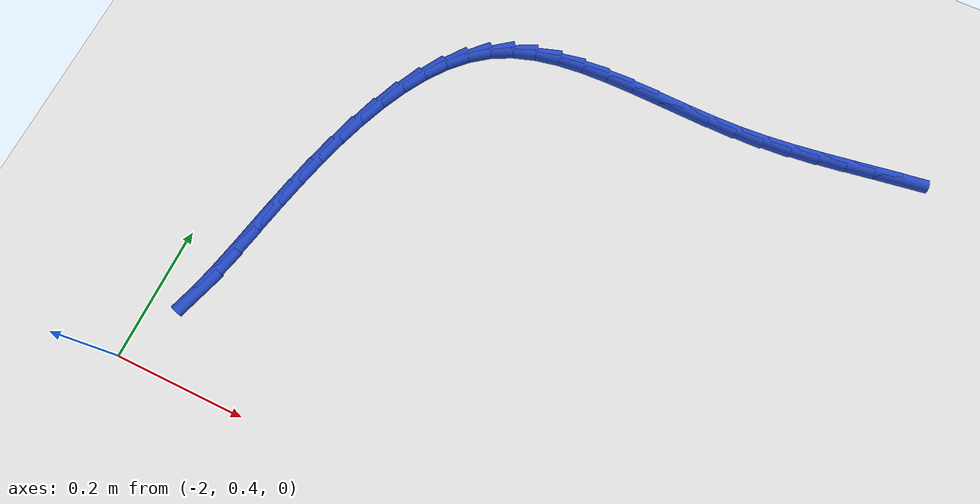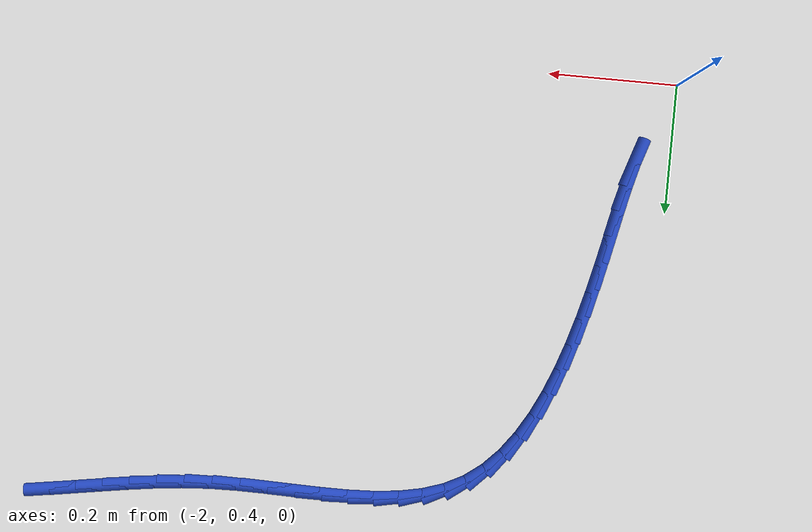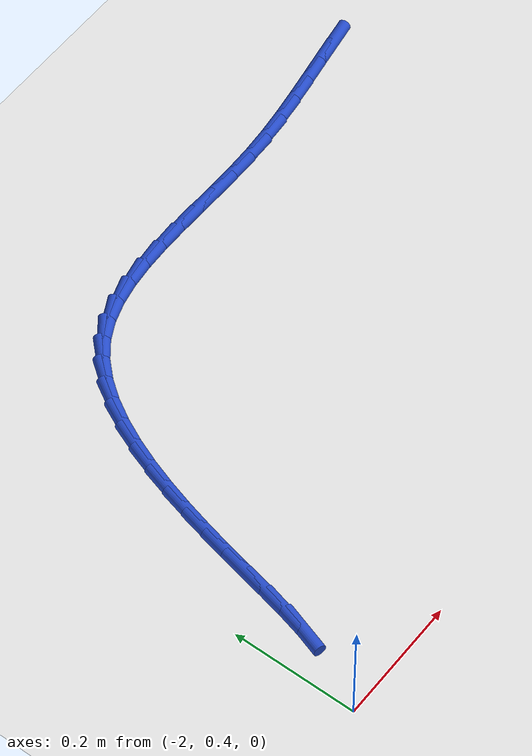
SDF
<sdf version="1.6">
 <world name="default">
  <model name="ground_plane">
   <static>1</static>
   <link name="link">
    <collision name="collision">
     <geometry><plane><normal>0 0 1</normal><size>100 100</size></plane></geometry>
     <surface><friction><ode><mu>100</mu><mu2>50</mu2></ode></friction></surface>
    </collision>
    <visual name="visual">
     <cast_shadows>0</cast_shadows>
     <geometry><plane><normal>0 0 1</normal><size>100 100</size></plane></geometry>
     <material>
      <script><uri>file://media/materials/scripts/gazebo.material</uri><name>Gazebo/WhiteGlow</name></script>
     </material>
    </visual>
   </link>
  </model>
  <model name="line">
   <link name="link_43">
    <pose>-1.089566437229341 1.1146714687094894 0.01 0 1.57 0.154556804587153</pose>
    <collision name="collision">
     <geometry><cylinder><radius>0.01</radius><length>0.08</length></cylinder></geometry>
    </collision>
    <visual name="visual">
     <material>
      <script><name>Gazebo/Blue</name><uri>file://media/materials/scripts/gazebo.material</uri></script>
     </material>
     <geometry><cylinder><radius>0.01</radius><length>0.08</length></cylinder></geometry>
    </visual>
   </link>
   <link name="link_44">
    <pose>-1.1291282538530034 1.108507763277835 0.01 0 1.57 0.16241205543671208</pose>
    <collision name="collision">
     <geometry><cylinder><radius>0.01</radius><length>0.08</length></cylinder></geometry>
    </collision>
    <visual name="visual">
     <material>
      <script><name>Gazebo/Blue</name><uri>file://media/materials/scripts/gazebo.material</uri></script>
     </material>
     <geometry><cylinder><radius>0.01</radius><length>0.08</length></cylinder></geometry>
    </visual>
   </link>
   <link name="link_45">
    <pose>-1.1692069919434094 1.101940649517528 0.01 0 1.57 0.15720941610956438</pose>
    <collision name="collision">
     <geometry><cylinder><radius>0.01</radius><length>0.08</length></cylinder></geometry>
    </collision>
    <visual name="visual">
     <material>
      <script><name>Gazebo/Blue</name><uri>file://media/materials/scripts/gazebo.material</uri></script>
     </material>
     <geometry><cylinder><radius>0.01</radius><length>0.08</length></cylinder></geometry>
    </visual>
   </link>
   <link name="link_46">
    <pose>-1.2098328649653456 1.0955007384143463 0.01 0 1.57 0.1394207588908501</pose>
    <collision name="collision">
     <geometry><cylinder><radius>0.01</radius><length>0.08</length></cylinder></geometry>
    </collision>
    <visual name="visual">
     <material>
      <script><name>Gazebo/Blue</name><uri>file://media/materials/scripts/gazebo.material</uri></script>
     </material>
     <geometry><cylinder><radius>0.01</radius><length>0.08</length></cylinder></geometry>
    </visual>
   </link>
   <link name="link_47">
    <pose>-1.2510360863835972 1.0897186409540687 0.01 0 1.57 0.10942923757531463</pose>
    <collision name="collision">
     <geometry><cylinder><radius>0.01</radius><length>0.08</length></cylinder></geometry>
    </collision>
    <visual name="visual">
     <material>
      <script><name>Gazebo/Blue</name><uri>file://media/materials/scripts/gazebo.material</uri></script>
     </material>
     <geometry><cylinder><radius>0.01</radius><length>0.08</length></cylinder></geometry>
    </visual>
   </link>
   <link name="link_48">
    <pose>-1.2928468696629505 1.0851249681224733 0.01 0 1.57 0.06762300138029415</pose>
    <collision name="collision">
     <geometry><cylinder><radius>0.01</radius><length>0.08</length></cylinder></geometry>
    </collision>
    <visual name="visual">
     <material>
      <script><name>Gazebo/Blue</name><uri>file://media/materials/scripts/gazebo.material</uri></script>
     </material>
     <geometry><cylinder><radius>0.01</radius><length>0.08</length></cylinder></geometry>
    </visual>
   </link>
   <link name="link_49">
    <pose>-1.335295350699566 1.0822500909473964 0.01 0 1.57 0.02122253255573115</pose>
    <collision name="collision">
     <geometry><cylinder><radius>0.01</radius><length>0.08</length></cylinder></geometry>
    </collision>
    <visual name="visual">
     <material>
      <script><name>Gazebo/Blue</name><uri>file://media/materials/scripts/gazebo.material</uri></script>
     </material>
     <geometry><cylinder><radius>0.01</radius><length>0.08</length></cylinder></geometry>
    </visual>
   </link>
   <link name="link_50">
    <pose>-1.378318731035652 1.0813368887526016 0.01 0 1.57 -0.010322235732062885</pose>
    <collision name="collision">
     <geometry><cylinder><radius>0.01</radius><length>0.08</length></cylinder></geometry>
    </collision>
    <visual name="visual">
     <material>
      <script><name>Gazebo/Blue</name><uri>file://media/materials/scripts/gazebo.material</uri></script>
     </material>
     <geometry><cylinder><radius>0.01</radius><length>0.08</length></cylinder></geometry>
    </visual>
   </link>
   <link name="link_51">
    <pose>-1.421581131992768 1.0817834693145658 0.01 0 1.57 -0.024350471237909153</pose>
    <collision name="collision">
     <geometry><cylinder><radius>0.01</radius><length>0.08</length></cylinder></geometry>
    </collision>
    <visual name="visual">
     <material>
      <script><name>Gazebo/Blue</name><uri>file://media/materials/scripts/gazebo.material</uri></script>
     </material>
     <geometry><cylinder><radius>0.01</radius><length>0.08</length></cylinder></geometry>
    </visual>
   </link>
   <link name="link_52">
    <pose>-1.4646967709657177 1.0828335629989094 0.01 0 1.57 -0.021069497140108945</pose>
    <collision name="collision">
     <geometry><cylinder><radius>0.01</radius><length>0.08</length></cylinder></geometry>
    </collision>
    <visual name="visual">
     <material>
      <script><name>Gazebo/Blue</name><uri>file://media/materials/scripts/gazebo.material</uri></script>
     </material>
     <geometry><cylinder><radius>0.01</radius><length>0.08</length></cylinder></geometry>
    </visual>
   </link>
   <link name="link_53">
    <pose>-1.5072798653493038 1.0837309001712534 0.01 0 1.57 0.00028054815895689066</pose>
    <collision name="collision">
     <geometry><cylinder><radius>0.01</radius><length>0.08</length></cylinder></geometry>
    </collision>
    <visual name="visual">
     <material>
      <script><name>Gazebo/Blue</name><uri>file://media/materials/scripts/gazebo.material</uri></script>
     </material>
     <geometry><cylinder><radius>0.01</radius><length>0.08</length></cylinder></geometry>
    </visual>
   </link>
   <link name="link_54">
    <pose>-1.5489446325383305 1.0837192111972185 0.01 0 1.57 0.04152610021821178</pose>
    <collision name="collision">
     <geometry><cylinder><radius>0.01</radius><length>0.08</length></cylinder></geometry>
    </collision>
    <visual name="visual">
     <material>
      <script><name>Gazebo/Blue</name><uri>file://media/materials/scripts/gazebo.material</uri></script>
     </material>
     <geometry><cylinder><radius>0.01</radius><length>0.08</length></cylinder></geometry>
    </visual>
   </link>
   <link name="link_55">
    <pose>-1.5893052899276021 1.0820422264424252 0.01 0 1.57 0.1055915617162553</pose>
    <collision name="collision">
     <geometry><cylinder><radius>0.01</radius><length>0.08</length></cylinder></geometry>
    </collision>
    <visual name="visual">
     <material>
      <script><name>Gazebo/Blue</name><uri>file://media/materials/scripts/gazebo.material</uri></script>
     </material>
     <geometry><cylinder><radius>0.01</radius><length>0.08</length></cylinder></geometry>
    </visual>
   </link>
   <link name="link_56">
    <pose>-1.6279760549119218 1.077943676272494 0.01 0 1.57 0.19627513024860932</pose>
    <collision name="collision">
     <geometry><cylinder><radius>0.01</radius><length>0.08</length></cylinder></geometry>
    </collision>
    <visual name="visual">
     <material>
      <script><name>Gazebo/Blue</name><uri>file://media/materials/scripts/gazebo.material</uri></script>
     </material>
     <geometry><cylinder><radius>0.01</radius><length>0.08</length></cylinder></geometry>
    </visual>
   </link>
   <link name="link_57">
    <pose>-1.6645711448860934 1.070667291053046 0.01 0 1.57 0.3173305803779513</pose>
    <collision name="collision">
     <geometry><cylinder><radius>0.01</radius><length>0.08</length></cylinder></geometry>
    </collision>
    <visual name="visual">
     <material>
      <script><name>Gazebo/Blue</name><uri>file://media/materials/scripts/gazebo.material</uri></script>
     </material>
     <geometry><cylinder><radius>0.01</radius><length>0.08</length></cylinder></geometry>
    </visual>
   </link>
   <link name="link_58">
    <pose>-1.698704777244921 1.0594568011497014 0.01 0 1.57 0.4702119670649027</pose>
    <collision name="collision">
     <geometry><cylinder><radius>0.01</radius><length>0.08</length></cylinder></geometry>
    </collision>
    <visual name="visual">
     <material>
      <script><name>Gazebo/Blue</name><uri>file://media/materials/scripts/gazebo.material</uri></script>
     </material>
     <geometry><cylinder><radius>0.01</radius><length>0.08</length></cylinder></geometry>
    </visual>
   </link>
   <link name="link_59">
    <pose>-1.7299912067844978 1.0435560181376553 0.01 0 1.57 0.6420619854397065</pose>
    <collision name="collision">
     <geometry><cylinder><radius>0.01</radius><length>0.08</length></cylinder></geometry>
    </collision>
    <visual name="visual">
     <material>
      <script><name>Gazebo/Blue</name><uri>file://media/materials/scripts/gazebo.material</uri></script>
     </material>
     <geometry><cylinder><radius>0.01</radius><length>0.08</length></cylinder></geometry>
    </visual>
   </link>
   <link name="link_60">
    <pose>-1.7581714988534767 1.0224840978654735 0.01 0 1.57 0.7973124822597307</pose>
    <collision name="collision">
     <geometry><cylinder><radius>0.01</radius><length>0.08</length></cylinder></geometry>
    </collision>
    <visual name="visual">
     <material>
      <script><name>Gazebo/Blue</name><uri>file://media/materials/scripts/gazebo.material</uri></script>
     </material>
     <geometry><cylinder><radius>0.01</radius><length>0.08</length></cylinder></geometry>
    </visual>
   </link>
   <link name="link_61">
    <pose>-1.783396746167659 0.9966504902873069 0.01 0 1.57 0.9273093266484324</pose>
    <collision name="collision">
     <geometry><cylinder><radius>0.01</radius><length>0.08</length></cylinder></geometry>
    </collision>
    <visual name="visual">
     <material>
      <script><name>Gazebo/Blue</name><uri>file://media/materials/scripts/gazebo.material</uri></script>
     </material>
     <geometry><cylinder><radius>0.01</radius><length>0.08</length></cylinder></geometry>
    </visual>
   </link>
   <link name="link_62">
    <pose>-1.8059007611545972 0.9666442550070218 0.01 0 1.57 1.0333875117511162</pose>
    <collision name="collision">
     <geometry><cylinder><radius>0.01</radius><length>0.08</length></cylinder></geometry>
    </collision>
    <visual name="visual">
     <material>
      <script><name>Gazebo/Blue</name><uri>file://media/materials/scripts/gazebo.material</uri></script>
     </material>
     <geometry><cylinder><radius>0.01</radius><length>0.08</length></cylinder></geometry>
    </visual>
   </link>
   <link name="link_63">
    <pose>-1.8259173562418434 0.9330544516284861 0.01 0 1.57 1.1187870121404961</pose>
    <collision name="collision">
     <geometry><cylinder><radius>0.01</radius><length>0.08</length></cylinder></geometry>
    </collision>
    <visual name="visual">
     <material>
      <script><name>Gazebo/Blue</name><uri>file://media/materials/scripts/gazebo.material</uri></script>
     </material>
     <geometry><cylinder><radius>0.01</radius><length>0.08</length></cylinder></geometry>
    </visual>
   </link>
   <link name="link_64">
    <pose>-1.8436803438569498 0.8964701397555677 0.01 0 1.57 1.1870376339425062</pose>
    <collision name="collision">
     <geometry><cylinder><radius>0.01</radius><length>0.08</length></cylinder></geometry>
    </collision>
    <visual name="visual">
     <material>
      <script><name>Gazebo/Blue</name><uri>file://media/materials/scripts/gazebo.material</uri></script>
     </material>
     <geometry><cylinder><radius>0.01</radius><length>0.08</length></cylinder></geometry>
    </visual>
   </link>
   <link name="link_65">
    <pose>-1.8594235364274692 0.8574803789921341 0.01 0 1.57 1.2412331016380833</pose>
    <collision name="collision">
     <geometry><cylinder><radius>0.01</radius><length>0.08</length></cylinder></geometry>
    </collision>
    <visual name="visual">
     <material>
      <script><name>Gazebo/Blue</name><uri>file://media/materials/scripts/gazebo.material</uri></script>
     </material>
     <geometry><cylinder><radius>0.01</radius><length>0.08</length></cylinder></geometry>
    </visual>
   </link>
   <link name="link_66">
    <pose>-1.873380746380953 0.8166742289420519 0.01 0 1.57 1.2838199786383757</pose>
    <collision name="collision">
     <geometry><cylinder><radius>0.01</radius><length>0.08</length></cylinder></geometry>
    </collision>
    <visual name="visual">
     <material>
      <script><name>Gazebo/Blue</name><uri>file://media/materials/scripts/gazebo.material</uri></script>
     </material>
     <geometry><cylinder><radius>0.01</radius><length>0.08</length></cylinder></geometry>
    </visual>
   </link>
   <link name="link_67">
    <pose>-1.8857857861449558 0.7746407492091901 0.01 0 1.57 1.3166032890664665</pose>
    <collision name="collision">
     <geometry><cylinder><radius>0.01</radius><length>0.08</length></cylinder></geometry>
    </collision>
    <visual name="visual">
     <material>
      <script><name>Gazebo/Blue</name><uri>file://media/materials/scripts/gazebo.material</uri></script>
     </material>
     <geometry><cylinder><radius>0.01</radius><length>0.08</length></cylinder></geometry>
    </visual>
   </link>
   <link name="link_68">
    <pose>-1.8968724681470273 0.731968999397415 0.01 0 1.57 1.3408116967962602</pose>
    <collision name="collision">
     <geometry><cylinder><radius>0.01</radius><length>0.08</length></cylinder></geometry>
    </collision>
    <visual name="visual">
     <material>
      <script><name>Gazebo/Blue</name><uri>file://media/materials/scripts/gazebo.material</uri></script>
     </material>
     <geometry><cylinder><radius>0.01</radius><length>0.08</length></cylinder></geometry>
    </visual>
   </link>
   <link name="link_69">
    <pose>-1.9068746048147216 0.6892480391105942 0.01 0 1.57 1.357152278588674</pose>
    <collision name="collision">
     <geometry><cylinder><radius>0.01</radius><length>0.08</length></cylinder></geometry>
    </collision>
    <visual name="visual">
     <material>
      <script><name>Gazebo/Blue</name><uri>file://media/materials/scripts/gazebo.material</uri></script>
     </material>
     <geometry><cylinder><radius>0.01</radius><length>0.08</length></cylinder></geometry>
    </visual>
   </link>
   <link name="link_70">
    <pose>-1.9160260085755907 0.647066927952596 0.01 0 1.57 1.363798926856791</pose>
    <collision name="collision">
     <geometry><cylinder><radius>0.01</radius><length>0.08</length></cylinder></geometry>
    </collision>
    <visual name="visual">
     <material>
      <script><name>Gazebo/Blue</name><uri>file://media/materials/scripts/gazebo.material</uri></script>
     </material>
     <geometry><cylinder><radius>0.01</radius><length>0.08</length></cylinder></geometry>
    </visual>
   </link>
   <link name="link_71">
    <pose>-1.9246632632454446 0.6059382083189199 0.01 0 1.57 1.3515918358280512</pose>
    <collision name="collision">
     <geometry><cylinder><radius>0.01</radius><length>0.08</length></cylinder></geometry>
    </collision>
    <visual name="visual">
     <material>
      <script><name>Gazebo/Blue</name><uri>file://media/materials/scripts/gazebo.material</uri></script>
     </material>
     <geometry><cylinder><radius>0.01</radius><length>0.08</length></cylinder></geometry>
    </visual>
   </link>
   <link name="link_72">
    <pose>-1.9335479472331443 0.5660579979621484 0.01 0 1.57 1.3166953159096941</pose>
    <collision name="collision">
     <geometry><cylinder><radius>0.01</radius><length>0.08</length></cylinder></geometry>
    </collision>
    <visual name="visual">
     <material>
      <script><name>Gazebo/Blue</name><uri>file://media/materials/scripts/gazebo.material</uri></script>
     </material>
     <geometry><cylinder><radius>0.01</radius><length>0.08</length></cylinder></geometry>
    </visual>
   </link>
   <link name="link_73">
    <pose>-1.9435514817050845 0.5275406325230502 0.01 0 1.57 1.2576454197118017</pose>
    <collision name="collision">
     <geometry><cylinder><radius>0.01</radius><length>0.08</length></cylinder></geometry>
    </collision>
    <visual name="visual">
     <material>
      <script><name>Gazebo/Blue</name><uri>file://media/materials/scripts/gazebo.material</uri></script>
     </material>
     <geometry><cylinder><radius>0.01</radius><length>0.08</length></cylinder></geometry>
    </visual>
   </link>
  </model>
 </world>
</sdf>
